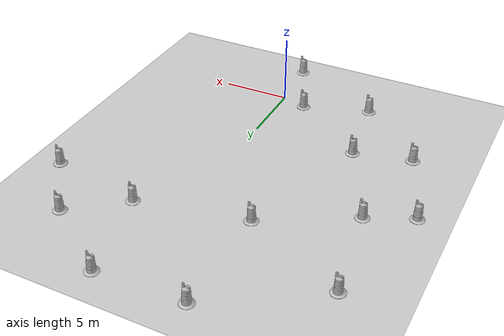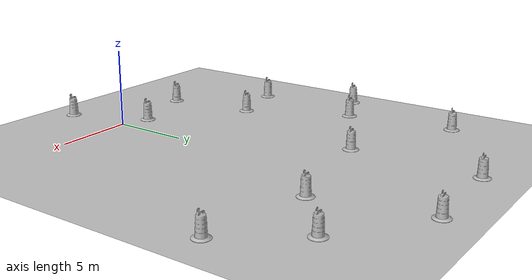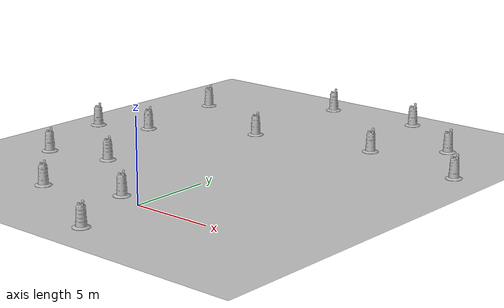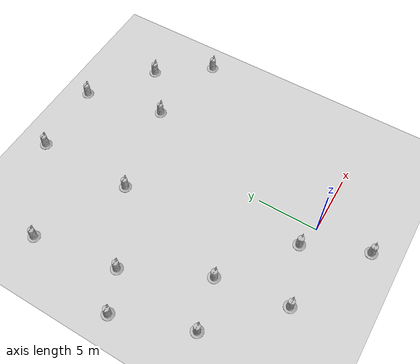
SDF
<sdf version="1.7">
 <world name="default">
  <light name="sun" type="directional">
   <pose>0 0 10 0 -0 0</pose>
   <diffuse>0.8 0.8 0.8 1</diffuse>
   <specular>0.2 0.2 0.2 1</specular>
   <attenuation>
    <range>1000</range>
    <constant>0.9</constant>
    <linear>0.01</linear>
    <quadratic>0.001</quadratic>
   </attenuation>
   <direction>-0.5 0.1 -0.9</direction>
   <spot><inner_angle>0</inner_angle><outer_angle>0</outer_angle><falloff>0</falloff></spot>
  </light>
  <model name="ground_plane">
   <static>1</static>
   <link name="link">
    <collision name="collision">
     <geometry><plane><normal>0 0 1</normal><size>100 100</size></plane></geometry>
     <surface><friction><ode><mu>100</mu><mu2>50</mu2></ode></friction></surface>
    </collision>
    <visual name="visual">
     <cast_shadows>0</cast_shadows>
     <geometry><plane><normal>0 0 1</normal><size>100 100</size></plane></geometry>
     <material>
      <script><uri>file://media/materials/scripts/gazebo.material</uri><name>Gazebo/Grey</name></script>
     </material>
    </visual>
   </link>
  </model>
  <gravity>0 0 -9.8</gravity>
  <magnetic_field>6e-06 2.3e-05 -4.2e-05</magnetic_field>
  <atmosphere type="adiabatic"/>
  <physics type="ode">
   <max_step_size>0.001</max_step_size>
   <real_time_factor>1</real_time_factor>
   <real_time_update_rate>1000</real_time_update_rate>
  </physics>
  <scene><ambient>0.4 0.4 0.4 1</ambient><background>0.7 0.7 0.7 1</background><shadows>1</shadows></scene>
  <audio><device>default</device></audio>
  <spherical_coordinates>
   <surface_model>EARTH_WGS84</surface_model>
   <latitude_deg>0</latitude_deg>
   <longitude_deg>0</longitude_deg>
   <elevation>0</elevation>
   <heading_deg>0</heading_deg>
  </spherical_coordinates>
  <model name="Construction Barrel">
   <link name="link">
    <inertial>
     <pose>0 0 0.4 0 -0 0</pose>
     <mass>500</mass>
     <inertia><ixx>51.2096</ixx><iyy>51.2096</iyy><izz>25</izz><ixy>0</ixy><ixz>0</ixz><iyz>0</iyz></inertia>
    </inertial>
    <collision name="collision">
     <geometry><mesh><uri>model://construction_barrel/meshes/construction_barrel.dae</uri></mesh></geometry>
    </collision>
    <visual name="visual">
     <geometry><mesh><uri>model://construction_barrel/meshes/construction_barrel.dae</uri></mesh></geometry>
    </visual>
   </link>
   <pose>-1.85186 0.577464 -0 1e-06 -1e-06 -1.2e-05</pose>
  </model>
  <model name="Construction Barrel_0">
   <link name="link">
    <inertial>
     <pose>0 0 0.4 0 -0 0</pose>
     <mass>500</mass>
     <inertia><ixx>51.2096</ixx><iyy>51.2096</iyy><izz>25</izz><ixy>0</ixy><ixz>0</ixz><iyz>0</iyz></inertia>
    </inertial>
    <collision name="collision">
     <geometry><mesh><uri>model://construction_barrel/meshes/construction_barrel.dae</uri></mesh></geometry>
    </collision>
    <visual name="visual">
     <geometry><mesh><uri>model://construction_barrel/meshes/construction_barrel.dae</uri></mesh></geometry>
    </visual>
   </link>
   <pose>-6.612 -0.983707 -1e-06 0 5e-06 -1e-05</pose>
  </model>
  <model name="Construction Barrel_1">
   <link name="link">
    <inertial>
     <pose>0 0 0.4 0 -0 0</pose>
     <mass>500</mass>
     <inertia><ixx>51.2096</ixx><iyy>51.2096</iyy><izz>25</izz><ixy>0</ixy><ixz>0</ixz><iyz>0</iyz></inertia>
    </inertial>
    <collision name="collision">
     <geometry><mesh><uri>model://construction_barrel/meshes/construction_barrel.dae</uri></mesh></geometry>
    </collision>
    <visual name="visual">
     <geometry><mesh><uri>model://construction_barrel/meshes/construction_barrel.dae</uri></mesh></geometry>
    </visual>
   </link>
   <pose>-11.5771 3.82776 -2e-06 -0 7e-06 -8e-06</pose>
  </model>
  <model name="Construction Barrel_2">
   <link name="link">
    <inertial>
     <pose>0 0 0.4 0 -0 0</pose>
     <mass>500</mass>
     <inertia><ixx>51.2096</ixx><iyy>51.2096</iyy><izz>25</izz><ixy>0</ixy><ixz>0</ixz><iyz>0</iyz></inertia>
    </inertial>
    <collision name="collision">
     <geometry><mesh><uri>model://construction_barrel/meshes/construction_barrel.dae</uri></mesh></geometry>
    </collision>
    <visual name="visual">
     <geometry><mesh><uri>model://construction_barrel/meshes/construction_barrel.dae</uri></mesh></geometry>
    </visual>
   </link>
   <pose>-10.6044 11.4032 -1e-06 3e-06 1e-05 -7e-06</pose>
  </model>
  <model name="Construction Barrel_3">
   <link name="link">
    <inertial>
     <pose>0 0 0.4 0 -0 0</pose>
     <mass>500</mass>
     <inertia><ixx>51.2096</ixx><iyy>51.2096</iyy><izz>25</izz><ixy>0</ixy><ixz>0</ixz><iyz>0</iyz></inertia>
    </inertial>
    <collision name="collision">
     <geometry><mesh><uri>model://construction_barrel/meshes/construction_barrel.dae</uri></mesh></geometry>
    </collision>
    <visual name="visual">
     <geometry><mesh><uri>model://construction_barrel/meshes/construction_barrel.dae</uri></mesh></geometry>
    </visual>
   </link>
   <pose>-11.6997 18.4006 1e-06 2e-06 3e-06 -6e-06</pose>
  </model>
  <model name="Construction Barrel_4">
   <link name="link">
    <inertial>
     <pose>0 0 0.4 0 -0 0</pose>
     <mass>500</mass>
     <inertia><ixx>51.2096</ixx><iyy>51.2096</iyy><izz>25</izz><ixy>0</ixy><ixz>0</ixz><iyz>0</iyz></inertia>
    </inertial>
    <collision name="collision">
     <geometry><mesh><uri>model://construction_barrel/meshes/construction_barrel.dae</uri></mesh></geometry>
    </collision>
    <visual name="visual">
     <geometry><mesh><uri>model://construction_barrel/meshes/construction_barrel.dae</uri></mesh></geometry>
    </visual>
   </link>
   <pose>-4.42524 23.0803 0 0 0 -3e-06</pose>
  </model>
  <model name="Construction Barrel_5">
   <link name="link">
    <inertial>
     <pose>0 0 0.4 0 -0 0</pose>
     <mass>500</mass>
     <inertia><ixx>51.2096</ixx><iyy>51.2096</iyy><izz>25</izz><ixy>0</ixy><ixz>0</ixz><iyz>0</iyz></inertia>
    </inertial>
    <collision name="collision">
     <geometry><mesh><uri>model://construction_barrel/meshes/construction_barrel.dae</uri></mesh></geometry>
    </collision>
    <visual name="visual">
     <geometry><mesh><uri>model://construction_barrel/meshes/construction_barrel.dae</uri></mesh></geometry>
    </visual>
   </link>
   <pose>1.87638 23.3584 -1e-06 3e-06 -2e-06 -2e-06</pose>
  </model>
  <model name="Construction Barrel_6">
   <link name="link">
    <inertial>
     <pose>0 0 0.4 0 -0 0</pose>
     <mass>500</mass>
     <inertia><ixx>51.2096</ixx><iyy>51.2096</iyy><izz>25</izz><ixy>0</ixy><ixz>0</ixz><iyz>0</iyz></inertia>
    </inertial>
    <collision name="collision">
     <geometry><mesh><uri>model://construction_barrel/meshes/construction_barrel.dae</uri></mesh></geometry>
    </collision>
    <visual name="visual">
     <geometry><mesh><uri>model://construction_barrel/meshes/construction_barrel.dae</uri></mesh></geometry>
    </visual>
   </link>
   <pose>-7.47866 4.82901 0 0 -0 0</pose>
  </model>
  <model name="Construction Barrel_7">
   <link name="link">
    <inertial>
     <pose>0 0 0.4 0 -0 0</pose>
     <mass>500</mass>
     <inertia><ixx>51.2096</ixx><iyy>51.2096</iyy><izz>25</izz><ixy>0</ixy><ixz>0</ixz><iyz>0</iyz></inertia>
    </inertial>
    <collision name="collision">
     <geometry><mesh><uri>model://construction_barrel/meshes/construction_barrel.dae</uri></mesh></geometry>
    </collision>
    <visual name="visual">
     <geometry><mesh><uri>model://construction_barrel/meshes/construction_barrel.dae</uri></mesh></geometry>
    </visual>
   </link>
   <pose>-13.7763 9.93781 0 0 -0 0</pose>
  </model>
  <model name="Construction Barrel_8">
   <link name="link">
    <inertial>
     <pose>0 0 0.4 0 -0 0</pose>
     <mass>500</mass>
     <inertia><ixx>51.2096</ixx><iyy>51.2096</iyy><izz>25</izz><ixy>0</ixy><ixz>0</ixz><iyz>0</iyz></inertia>
    </inertial>
    <collision name="collision">
     <geometry><mesh><uri>model://construction_barrel/meshes/construction_barrel.dae</uri></mesh></geometry>
    </collision>
    <visual name="visual">
     <geometry><mesh><uri>model://construction_barrel/meshes/construction_barrel.dae</uri></mesh></geometry>
    </visual>
   </link>
   <pose>-4.43438 14.9063 0 0 -0 0</pose>
  </model>
  <model name="Construction Barrel_9">
   <link name="link">
    <inertial>
     <pose>0 0 0.4 0 -0 0</pose>
     <mass>500</mass>
     <inertia><ixx>51.2096</ixx><iyy>51.2096</iyy><izz>25</izz><ixy>0</ixy><ixz>0</ixz><iyz>0</iyz></inertia>
    </inertial>
    <collision name="collision">
     <geometry><mesh><uri>model://construction_barrel/meshes/construction_barrel.dae</uri></mesh></geometry>
    </collision>
    <visual name="visual">
     <geometry><mesh><uri>model://construction_barrel/meshes/construction_barrel.dae</uri></mesh></geometry>
    </visual>
   </link>
   <pose>3.40282 16.5853 0 0 -0 0</pose>
  </model>
  <model name="Construction Barrel_10">
   <link name="link">
    <inertial>
     <pose>0 0 0.4 0 -0 0</pose>
     <mass>500</mass>
     <inertia><ixx>51.2096</ixx><iyy>51.2096</iyy><izz>25</izz><ixy>0</ixy><ixz>0</ixz><iyz>0</iyz></inertia>
    </inertial>
    <collision name="collision">
     <geometry><mesh><uri>model://construction_barrel/meshes/construction_barrel.dae</uri></mesh></geometry>
    </collision>
    <visual name="visual">
     <geometry><mesh><uri>model://construction_barrel/meshes/construction_barrel.dae</uri></mesh></geometry>
    </visual>
   </link>
   <pose>7.07682 19.5599 0 0 -0 0</pose>
  </model>
  <model name="Construction Barrel_11">
   <link name="link">
    <inertial>
     <pose>0 0 0.4 0 -0 0</pose>
     <mass>500</mass>
     <inertia><ixx>51.2096</ixx><iyy>51.2096</iyy><izz>25</izz><ixy>0</ixy><ixz>0</ixz><iyz>0</iyz></inertia>
    </inertial>
    <collision name="collision">
     <geometry><mesh><uri>model://construction_barrel/meshes/construction_barrel.dae</uri></mesh></geometry>
    </collision>
    <visual name="visual">
     <geometry><mesh><uri>model://construction_barrel/meshes/construction_barrel.dae</uri></mesh></geometry>
    </visual>
   </link>
   <pose>10.2607 15.291 0 0 -0 0</pose>
  </model>
  <model name="Construction Barrel_12">
   <link name="link">
    <inertial>
     <pose>0 0 0.4 0 -0 0</pose>
     <mass>500</mass>
     <inertia><ixx>51.2096</ixx><iyy>51.2096</iyy><izz>25</izz><ixy>0</ixy><ixz>0</ixz><iyz>0</iyz></inertia>
    </inertial>
    <collision name="collision">
     <geometry><mesh><uri>model://construction_barrel/meshes/construction_barrel.dae</uri></mesh></geometry>
    </collision>
    <visual name="visual">
     <geometry><mesh><uri>model://construction_barrel/meshes/construction_barrel.dae</uri></mesh></geometry>
    </visual>
   </link>
   <pose>0.322136 -4.40747 0 0 -0 0</pose>
  </model>
 </world>
</sdf>
